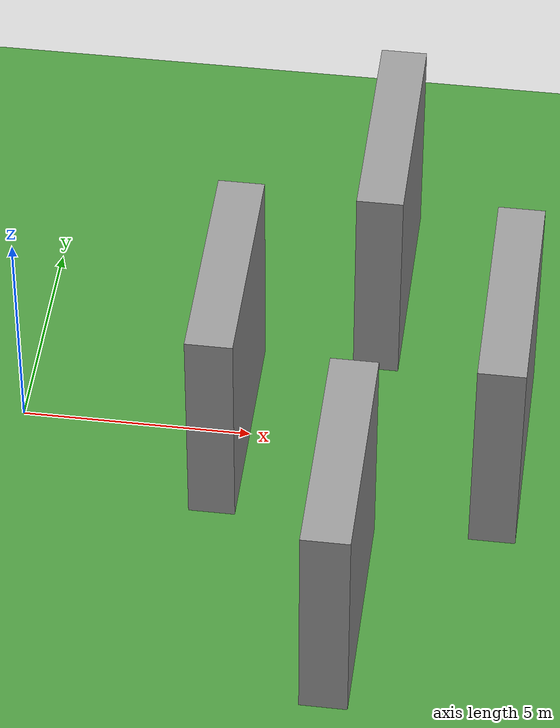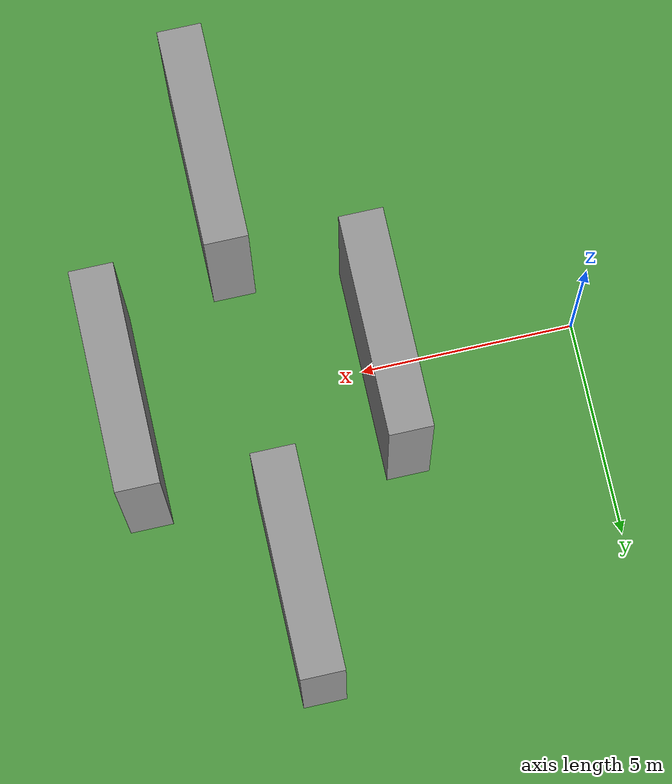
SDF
<sdf version="1.7">
 <world name="default">
  <spherical_coordinates>
   <surface_model>EARTH_WGS84</surface_model>
   <latitude_deg>47.3977</latitude_deg>
   <longitude_deg>8.54559</longitude_deg>
   <elevation>0</elevation>
   <heading_deg>0</heading_deg>
  </spherical_coordinates>
  <physics name="default_physics" default="0" type="ode">
   <ode>
    <solver>
     <type>quick</type>
     <iters>50</iters>
     <sor>1.3</sor>
     <use_dynamic_moi_rescaling>0</use_dynamic_moi_rescaling>
    </solver>
    <constraints>
     <cfm>0</cfm>
     <erp>0.2</erp>
     <contact_max_correcting_vel>100</contact_max_correcting_vel>
     <contact_surface_layer>0.001</contact_surface_layer>
    </constraints>
   </ode>
   <max_step_size>0.001</max_step_size>
   <real_time_factor>1</real_time_factor>
   <real_time_update_rate>1000</real_time_update_rate>
  </physics>
  <scene><shadows>0</shadows><ambient>0.4 0.4 0.4 1</ambient><background>0.7 0.7 0.7 1</background></scene>
  <light name="sun" type="directional">
   <pose>250 250 600 0 -0 0</pose>
   <diffuse>0.8 0.8 0.8 1</diffuse>
   <specular>0.2 0.2 0.2 1</specular>
   <attenuation>
    <range>1000</range>
    <constant>0.9</constant>
    <linear>0.01</linear>
    <quadratic>0.001</quadratic>
   </attenuation>
   <direction>0 0 -1</direction>
   <spot><inner_angle>0</inner_angle><outer_angle>0</outer_angle><falloff>0</falloff></spot>
  </light>
  <model name="ground_plane">
   <static>1</static>
   <link name="link">
    <collision name="collision">
     <geometry><plane><normal>0 0 1</normal><size>250 250</size></plane></geometry>
     <surface><friction><ode><mu>1</mu><mu2>1</mu2></ode></friction></surface>
    </collision>
    <visual name="visual">
     <cast_shadows>0</cast_shadows>
     <geometry><plane><normal>0 0 1</normal><size>250 250</size></plane></geometry>
     <material>
      <script><name>Gazebo/Grass</name><uri>file://media/materials/scripts/gazebo.material</uri></script>
     </material>
    </visual>
   </link>
  </model>
  <gravity>0 0 -9.8066</gravity>
  <magnetic_field>6e-06 2.3e-05 -4.2e-05</magnetic_field>
  <atmosphere type="adiabatic"/>
  <audio><device>default</device></audio>
  <model name="unit_box_clone">
   <static>1</static>
   <pose>7.49271 -4.90332 2.5 0 -0 0</pose>
   <link name="link">
    <inertial>
     <mass>1</mass>
     <inertia>
      <ixx>0.166667</ixx>
      <ixy>0</ixy>
      <ixz>0</ixz>
      <iyy>0.166667</iyy>
      <iyz>0</iyz>
      <izz>0.166667</izz>
     </inertia>
    </inertial>
    <collision name="collision"><geometry><box><size>1 5 5</size></box></geometry></collision>
    <visual name="visual">
     <geometry><box><size>1 5 5</size></box></geometry>
     <material>
      <script><name>Gazebo/Grey</name><uri>file://media/materials/scripts/gazebo.material</uri></script>
     </material>
    </visual>
   </link>
  </model>
  <model name="unit_box_clone_0">
   <static>1</static>
   <pose>7.49307 4.84038 2.5 0 -0 0</pose>
   <link name="link">
    <inertial>
     <mass>1</mass>
     <inertia>
      <ixx>0.166667</ixx>
      <ixy>0</ixy>
      <ixz>0</ixz>
      <iyy>0.166667</iyy>
      <iyz>0</iyz>
      <izz>0.166667</izz>
     </inertia>
    </inertial>
    <collision name="collision"><geometry><box><size>1 5 5</size></box></geometry></collision>
    <visual name="visual">
     <geometry><box><size>1 5 5</size></box></geometry>
     <material>
      <script><name>Gazebo/Grey</name><uri>file://media/materials/scripts/gazebo.material</uri></script>
     </material>
    </visual>
   </link>
  </model>
  <model name="unit_box_clone_0_clone">
   <static>1</static>
   <pose>4.49328 0.11354 2.5 0 -0 0</pose>
   <link name="link">
    <inertial>
     <mass>1</mass>
     <inertia>
      <ixx>0.166667</ixx>
      <ixy>0</ixy>
      <ixz>0</ixz>
      <iyy>0.166667</iyy>
      <iyz>0</iyz>
      <izz>0.166667</izz>
     </inertia>
    </inertial>
    <collision name="collision"><geometry><box><size>1 5 5</size></box></geometry></collision>
    <visual name="visual">
     <geometry><box><size>1 5 5</size></box></geometry>
     <material>
      <script><name>Gazebo/Grey</name><uri>file://media/materials/scripts/gazebo.material</uri></script>
     </material>
    </visual>
   </link>
  </model>
  <model name="unit_box_clone_0_clone_0">
   <static>1</static>
   <pose>10.4944 0.04169 2.5 0 -0 0</pose>
   <link name="link">
    <inertial>
     <mass>1</mass>
     <inertia>
      <ixx>0.166667</ixx>
      <ixy>0</ixy>
      <ixz>0</ixz>
      <iyy>0.166667</iyy>
      <iyz>0</iyz>
      <izz>0.166667</izz>
     </inertia>
    </inertial>
    <collision name="collision"><geometry><box><size>1 5 5</size></box></geometry></collision>
    <visual name="visual">
     <geometry><box><size>1 5 5</size></box></geometry>
     <material>
      <script><name>Gazebo/Grey</name><uri>file://media/materials/scripts/gazebo.material</uri></script>
     </material>
    </visual>
   </link>
  </model>
 </world>
</sdf>
